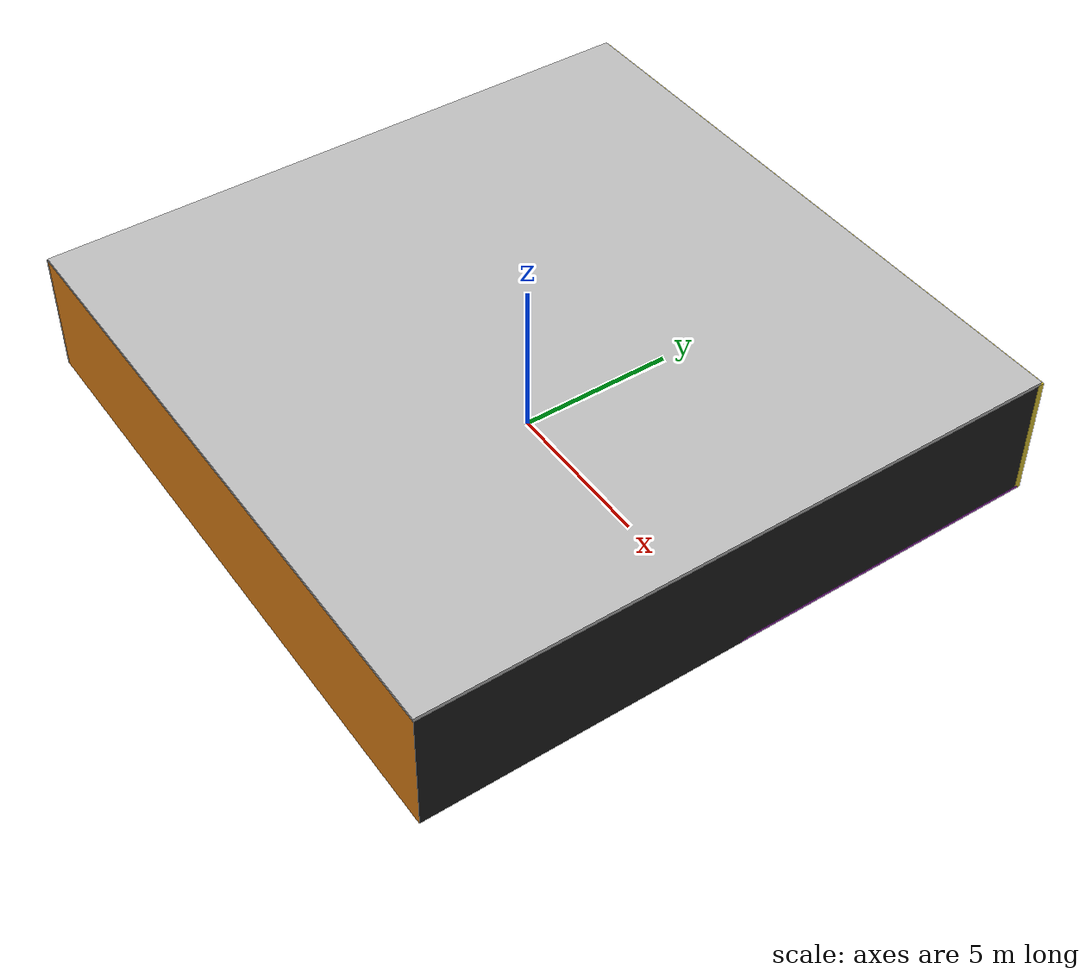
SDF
<sdf version="1.4">
 <world name="default">
  <physics type="ode">
   <max_step_size>0.001</max_step_size>
   <real_time_factor>1</real_time_factor>
   <real_time_update_rate>1000</real_time_update_rate>
   <gravity>0 0 -9.8</gravity>
  </physics>
  <scene><ambient>0.4 0.4 0.4 1</ambient><background>0.7 0.7 0.7 1</background><shadows>1</shadows></scene>
  <model name="Surrounding">
   <static>1</static>
   <link name="Ceiling">
    <collision name="Ceiling_Collision"><geometry><box><size>20 20 0.1</size></box></geometry></collision>
    <visual name="Ceiling_Visual">
     <geometry><box><size>20 20 0.1</size></box></geometry>
     <material>
      <script><uri>file://media/materials/scripts/gazebo.material</uri><name>Gazebo/LightOff</name></script>
     </material>
    </visual>
    <pose>0 0 4.05 0 0 0</pose>
   </link>
   <link name="Wall_South">
    <collision name="Wall_South_Collision">
     <geometry><box><size>20 0 4</size></box></geometry>
     <pose>0 0 2 0 -0 0</pose>
    </collision>
    <visual name="Wall_South_Visual">
     <pose>0 0 2 0 -0 0</pose>
     <geometry><box><size>20 0 4</size></box></geometry>
     <material>
      <script><uri>file://media/materials/scripts/gazebo.material</uri><name>Gazebo/Orange</name></script>
     </material>
    </visual>
    <velocity_decay><linear>0</linear><angular>0</angular></velocity_decay>
    <pose>0 -10 0 0 -0 0</pose>
   </link>
   <link name="Wall_East">
    <collision name="Wall_21_Collision">
     <geometry><box><size>20 0 4</size></box></geometry>
     <pose>0 0 2 0 -0 0</pose>
    </collision>
    <visual name="Wall_21_Visual">
     <pose>0 0 2 0 -0 0</pose>
     <geometry><box><size>20 0 4</size></box></geometry>
     <material>
      <script><uri>file://media/materials/scripts/gazebo.material</uri><name>Gazebo/FlatBlack</name></script>
     </material>
    </visual>
    <velocity_decay><linear>0</linear><angular>0</angular></velocity_decay>
    <pose>10 0 0 0 -0 1.5708</pose>
   </link>
   <link name="Wall_North">
    <collision name="Wall_22_Collision">
     <geometry><box><size>20 0.2 4</size></box></geometry>
     <pose>0 0 2 0 -0 0</pose>
    </collision>
    <visual name="Wall_22_Visual">
     <pose>0 0 2 0 -0 0</pose>
     <geometry><box><size>20 0.2 4</size></box></geometry>
     <material>
      <script><uri>file://media/materials/scripts/gazebo.material</uri><name>Gazebo/ZincYellow</name></script>
     </material>
    </visual>
    <velocity_decay><linear>0</linear><angular>0</angular></velocity_decay>
    <pose>0 10 0 0 -0 0</pose>
   </link>
   <link name="Wall_West">
    <collision name="Wall_23_Collision">
     <geometry><box><size>20 0.2 4</size></box></geometry>
     <pose>0 0 2 0 -0 0</pose>
    </collision>
    <visual name="Wall_23_Visual">
     <pose>0 0 2 0 -0 0</pose>
     <geometry><box><size>20 0.2 4</size></box></geometry>
     <material>
      <script><uri>file://media/materials/scripts/gazebo.material</uri><name>Gazebo/Black</name></script>
     </material>
    </visual>
    <velocity_decay><linear>0</linear><angular>0</angular></velocity_decay>
    <pose>-10 0 0 0 0 -1.5708</pose>
   </link>
   <link name="Ground_link">
    <collision name="collision">
     <pose>0 0 .05 0 -0 0</pose>
     <geometry><box><size>20 20 0.1</size></box></geometry>
    </collision>
    <visual name="visual">
     <pose>0 0 .05 0 -0 0</pose>
     <geometry><box><size>20 20 0.1</size></box></geometry>
     <material>
      <script><uri>file://media/materials/scripts/gazebo.material</uri><name>Gazebo/PurpleGlow</name></script>
     </material>
    </visual>
   </link>
   <static>1</static>
  </model>
  <spherical_coordinates>
   <surface_model>EARTH_WGS84</surface_model>
   <latitude_deg>0</latitude_deg>
   <longitude_deg>0</longitude_deg>
   <elevation>0</elevation>
   <heading_deg>0</heading_deg>
  </spherical_coordinates>
  <light name="lightball_0" type="diffuse">
   <diffuse>0.8 0.8 0.8 1</diffuse>
   <specular>0.2 0.2 0.2 1</specular>
   <attenuation>
    <range>100</range>
    <constant>0.7</constant>
    <linear>0.01</linear>
    <quadratic>0.001</quadratic>
   </attenuation>
   <direction>-0.5 0.1 -0.9</direction>
   <pose>6.50125834199 -1.82145450288 1.98225680347 0 0 0</pose>
  </light>
  <light name="lightball_1" type="diffuse">
   <diffuse>0.8 0.8 0.8 1</diffuse>
   <specular>0.2 0.2 0.2 1</specular>
   <attenuation>
    <range>100</range>
    <constant>0.7</constant>
    <linear>0.01</linear>
    <quadratic>0.001</quadratic>
   </attenuation>
   <direction>-0.5 0.1 -0.9</direction>
   <pose>7.62360989715 3.64573185011 1.99039786326 0 0 0</pose>
  </light>
  <light name="lightball_2" type="diffuse">
   <diffuse>0.8 0.8 0.8 1</diffuse>
   <specular>0.2 0.2 0.2 1</specular>
   <attenuation>
    <range>100</range>
    <constant>0.7</constant>
    <linear>0.01</linear>
    <quadratic>0.001</quadratic>
   </attenuation>
   <direction>-0.5 0.1 -0.9</direction>
   <pose>1.2990058517 0.673011617504 1.94513890905 0 0 0</pose>
  </light>
  <include><uri>model://cabinet</uri><pose>-7.21000328321 -3.81358541384 0 0 0 0.405336868099</pose></include>
  <include><uri>model://cabinet</uri><pose>-3.56114431033 -8.09825858194 0 0 0 2.8893806229</pose></include>
  <include>
   <uri>model://textured_shapes</uri>
   <pose>-4.88473246316 0.569875254864 0 0 0 0.913722907226</pose>
  </include>
  <include>
   <uri>model://textured_shapes</uri>
   <pose>-1.07439126356 6.72355922867 0 0 0 1.81049342494</pose>
  </include>
  <include>
   <uri>model://robocup_3Dsim_goal</uri>
   <pose>5.37591816753 3.78993744641 0 0 0 1.82550859395</pose>
  </include>
  <include><uri>model://table</uri><pose>6.79963129704 -5.09633093948 0 0 0 2.90279814744</pose></include>
 </world>
</sdf>

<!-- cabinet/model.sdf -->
<sdf version="1.5">
  <model name="cabinet">
    <static>true</static>
    <link name="cabinet_bottom_plate">
      <inertial>
        <pose>0 0 -1 0 0 0</pose>
        <inertia>
          <ixx>2.050000</ixx>
          <ixy>0</ixy>
          <ixz>0</ixz>
          <iyy>2.050000</iyy>
          <iyz>0</iyz>
          <izz>2.050000</izz>
        </inertia>
        <mass>25.000000</mass>
      </inertial>
      <collision name="cabinet_bottom_plate_geom">
        <pose>0 0 0.010000 0 0 0</pose>
        <geometry>
          <box>
            <size>0.450000 0.450000 0.020000</size>
          </box>
        </geometry>
      </collision>
      <visual name="cabinet_bottom_plate_geom_visual">
        <pose>0 0 0.010000 0 0 0</pose>
        <geometry>
          <box>
            <size>0.450000 0.450000 0.020000</size>
          </box>
        </geometry>
        <material>
          <script>
            <uri>model://media/materials/scripts/gazebo.material</uri>
            <name>Gazebo/Wood</name>
          </script>
        </material>
      </visual>
      <collision name="cabinet_bottom_plate_geom_cabinet_back_plate">
        <pose>0.235000 0 0.510000 0 0 0</pose>
        <geometry>
          <box>
            <size>0.020000 0.450000 1.020000</size>
          </box>
        </geometry>
      </collision>
      <visual name="cabinet_bottom_plate_geom_cabinet_back_plate_visual">
        <pose>0.235000 0 0.510000 0 0 0</pose>
        <geometry>
          <box>
            <size>0.020000 0.450000 1.020000</size>
          </box>
        </geometry>
        <material>
          <script>
            <uri>model://media/materials/scripts/gazebo.material</uri>
            <name>Gazebo/Wood</name>
          </script>
        </material>
      </visual>
      <collision name="cabinet_bottom_plate_geom_cabinet_left_plate">
        <pose>0 0.235000 0.510000 0 0 0</pose>
        <geometry>
          <box>
            <size>0.450000 0.020000 1.020000</size>
          </box>
        </geometry>
      </collision>
      <visual name="cabinet_bottom_plate_geom_cabinet_left_plate_visual">
        <pose>0 0.235000 0.510000 0 0 0</pose>
        <geometry>
          <box>
            <size>0.450000 0.020000 1.020000</size>
          </box>
        </geometry>
        <material>
          <script>
            <uri>model://media/materials/scripts/gazebo.material</uri>
            <name>Gazebo/Wood</name>
          </script>
        </material>
      </visual>
      <collision name="cabinet_bottom_plate_geom_cabinet_middle_plate">
        <pose>0 0 0.510000 0 0 0</pose>
        <geometry>
          <box>
            <size>0.450000 0.450000 0.020000</size>
          </box>
        </geometry>
      </collision>
      <visual name="cabinet_bottom_plate_geom_cabinet_middle_plate_visual">
        <pose>0 0 0.510000 0 0 0</pose>
        <geometry>
          <box>
            <size>0.450000 0.450000 0.020000</size>
          </box>
        </geometry>
        <material>
          <script>
            <uri>model://media/materials/scripts/gazebo.material</uri>
            <name>Gazebo/Wood</name>
          </script>
        </material>
      </visual>
      <collision name="cabinet_bottom_plate_geom_cabinet_right_plate">
        <pose>0 -0.235000 0.510000 0 0 0</pose>
        <geometry>
          <box>
            <size>0.450000 0.020000 1.020000</size>
          </box>
        </geometry>
      </collision>
      <visual name="cabinet_bottom_plate_geom_cabinet_right_plate_visual">
        <pose>0 -0.235000 0.510000 0 0 0</pose>
        <geometry>
          <box>
            <size>0.450000 0.020000 1.020000</size>
          </box>
        </geometry>
        <material>
          <script>
            <uri>model://media/materials/scripts/gazebo.material</uri>
            <name>Gazebo/Wood</name>
          </script>
        </material>
      </visual>
      <collision name="cabinet_bottom_plate_geom_cabinet_top_plate">
        <pose>0 0 1.010000 0 0 0</pose>
        <geometry>
          <box>
            <size>0.450000 0.450000 0.020000</size>
          </box>
        </geometry>
      </collision>
      <visual name="cabinet_bottom_plate_geom_cabinet_top_plate_visual">
        <pose>0 0 1.010000 0 0 0</pose>
        <geometry>
          <box>
            <size>0.450000 0.450000 0.020000</size>
          </box>
        </geometry>
        <material>
          <script>
            <uri>model://media/materials/scripts/gazebo.material</uri>
            <name>Gazebo/Wood</name>
          </script>
        </material>
      </visual>
    </link>
  </model>
</sdf>

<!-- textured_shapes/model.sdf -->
<sdf version="1.6">
  <model name="textured_shapes">
    <pose>0 0 0.5 0 0 0</pose>
    <link name="box">
      <pose>0 -1.5 0 0 0 0</pose>
      <collision name="collision">
        <geometry>
          <box>
            <size>1 1 1</size>
          </box>
        </geometry>
      </collision>
      <visual name="visual">
        <geometry>
          <box>
            <size>1 1 1</size>
          </box>
        </geometry>
        <material>
          <script>
            <uri>model://../model_source/models/textured_shapes/materials/scripts</uri>
            <uri>model://../model_source/models/textured_shapes/materials/textures</uri>
            <name>TexturedShape/Squares</name>
          </script>
        </material>
      </visual>
    </link>
    <link name="sphere">
      <collision name="collision">
        <geometry>
          <sphere>
            <radius>0.5</radius>
          </sphere>
        </geometry>
      </collision>
      <visual name="visual">
        <geometry>
          <sphere>
            <radius>0.5</radius>
          </sphere>
        </geometry>
        <material>
          <script>
            <uri>model://../model_source/models/textured_shapes/materials/scripts</uri>
            <uri>model://../model_source/models/textured_shapes/materials/textures</uri>
            <name>TexturedShape/Squares</name>
          </script>
        </material>
      </visual>
    </link>
    <link name="cylinder">
      <pose>0 1.5 0 0 0 0</pose>
      <collision name="collision">
        <geometry>
          <cylinder>
            <radius>0.5</radius>
            <length>1</length>
          </cylinder>
        </geometry>
      </collision>
      <visual name="visual">
        <geometry>
          <cylinder>
            <radius>0.5</radius>
            <length>1</length>
          </cylinder>
        </geometry>
        <material>
          <script>
            <uri>model://../model_source/models/textured_shapes/materials/scripts</uri>
            <uri>model://../model_source/models/textured_shapes/materials/textures</uri>
            <name>TexturedShape/Squares</name>
          </script>
        </material>
      </visual>
    </link>
  </model>
</sdf>

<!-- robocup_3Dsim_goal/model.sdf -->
<sdf version="1.5">
  <model name="robocup_3d_goal">
    <static>true</static>
    <link name="left_post">
      <pose>0 1.05 0.45 0 0 0</pose>
      <collision name="collision">
        <geometry>
          <cylinder>
            <radius>0.05</radius>
            <length>0.9</length>
          </cylinder>
        </geometry>
      </collision>
      <visual name="visual">
        <geometry>
          <cylinder>
            <radius>0.05</radius>
            <length>0.9</length>
          </cylinder>
        </geometry>
        <material>
          <script>
            <uri>file://media/materials/scripts/gazebo.material</uri>
            <name>Gazebo/ZincYellow</name>
          </script>
        </material>
      </visual>
    </link>
    <link name="left_support_horiz_lower">
      <pose>0.30 1.05 0.01 0 0 0</pose>
      <collision name="collision">
        <geometry>
          <box>
            <size>0.50 0.02 0.02</size>
          </box>
        </geometry>
      </collision>
      <visual name="visual">
        <geometry>
          <box>
            <size>0.50 0.02 0.02</size>
          </box>
        </geometry>
        <material>
          <script>
            <uri>file://media/materials/scripts/gazebo.material</uri>
            <name>Gazebo/White</name>
          </script>
        </material>
      </visual>
    </link>
    <link name="left_support_horiz_upper">
      <pose>0.30 1.05 0.79 0 0 0</pose>
      <collision name="collision">
        <geometry>
          <box>
            <size>0.50 0.02 0.02</size>
          </box>
        </geometry>
      </collision>
      <visual name="visual">
        <geometry>
          <box>
            <size>0.50 0.02 0.02</size>
          </box>
        </geometry>
        <material>
          <script>
            <uri>file://media/materials/scripts/gazebo.material</uri>
            <name>Gazebo/White</name>
          </script>
        </material>
      </visual>
    </link>
    <link name="left_support_vertical">
      <pose>0.56 1.05 0.4 0 1.5708 0</pose>
      <collision name="collision">
        <geometry>
          <box>
            <size>0.80 0.02 0.02</size>
          </box>
        </geometry>
      </collision>
      <visual name="visual">
        <geometry>
          <box>
            <size>0.80 0.02 0.02</size>
          </box>
        </geometry>
        <material>
          <script>
            <uri>file://media/materials/scripts/gazebo.material</uri>
            <name>Gazebo/White</name>
          </script>
        </material>
      </visual>
    </link>
    <link name="right_support_horiz_lower">
      <pose>0.30 -1.05 0.01 0 0 0</pose>
      <collision name="collision">
        <geometry>
          <box>
            <size>0.50 0.02 0.02</size>
          </box>
        </geometry>
      </collision>
      <visual name="visual">
        <geometry>
          <box>
            <size>0.50 0.02 0.02</size>
          </box>
        </geometry>
        <material>
          <script>
            <uri>file://media/materials/scripts/gazebo.material</uri>
            <name>Gazebo/White</name>
          </script>
        </material>
      </visual>
    </link>
    <link name="right_support_horiz_upper">
      <pose>0.30 -1.05 0.79 0 0 0</pose>
      <collision name="collision">
        <geometry>
          <box>
            <size>0.50 0.02 0.02</size>
          </box>
        </geometry>
      </collision>
      <visual name="visual">
        <geometry>
          <box>
            <size>0.50 0.02 0.02</size>
          </box>
        </geometry>
        <material>
          <script>
            <uri>file://media/materials/scripts/gazebo.material</uri>
            <name>Gazebo/White</name>
          </script>
        </material>
      </visual>
    </link>
    <link name="right_support_vertical">
      <pose>0.56 -1.05 0.4 0 1.5708 0</pose>
      <collision name="collision">
        <geometry>
          <box>
            <size>0.80 0.02 0.02</size>
          </box>
        </geometry>
      </collision>
      <visual name="visual">
        <geometry>
          <box>
            <size>0.80 0.02 0.02</size>
          </box>
        </geometry>
        <material>
          <script>
            <uri>file://media/materials/scripts/gazebo.material</uri>
            <name>Gazebo/White</name>
          </script>
        </material>
      </visual>
    </link>
    <link name="center_support_horiz_lower">
      <pose>0.56 0 0.01 0 1.5708 0</pose>
      <collision name="collision">
        <geometry>
          <box>
            <size>0.02 2.08 0.02</size>
          </box>
        </geometry>
      </collision>
      <visual name="visual">
        <geometry>
          <box>
            <size>0.02 2.08 0.02</size>
          </box>
        </geometry>
        <material>
          <script>
            <uri>file://media/materials/scripts/gazebo.material</uri>
            <name>Gazebo/White</name>
          </script>
        </material>
      </visual>
    </link>
    <link name="center_support_horiz_upper">
      <pose>0.56 0 0.79 0 1.5708 0</pose>
      <collision name="collision">
        <geometry>
          <box>
            <size>0.02 2.08 0.02</size>
          </box>
        </geometry>
      </collision>
      <visual name="visual">
        <geometry>
          <box>
            <size>0.02 2.08 0.02</size>
          </box>
        </geometry>
        <material>
          <script>
            <uri>file://media/materials/scripts/gazebo.material</uri>
            <name>Gazebo/White</name>
          </script>
        </material>
      </visual>
    </link>
    <link name="right_post">
      <pose>0 -1.05 0.45 0 0 0</pose>
      <collision name="collision">
        <geometry>
          <cylinder>
            <radius>0.05</radius>
            <length>0.9</length>
          </cylinder>
        </geometry>
      </collision>
      <visual name="visual">
        <geometry>
          <cylinder>
            <radius>0.05</radius>
            <length>0.9</length>
          </cylinder>
        </geometry>
        <material>
          <script>
            <uri>file://media/materials/scripts/gazebo.material</uri>
            <name>Gazebo/ZincYellow</name>
          </script>
        </material>
      </visual>
    </link>
    <link name="crossbar">
      <pose>0 0 0.85 1.57 1.57 0</pose>
      <collision name="collision">
        <geometry>
          <cylinder>
            <radius>0.05</radius>
            <length>2.0</length>
          </cylinder>
        </geometry>
      </collision>
      <visual name="visual">
        <geometry>
          <cylinder>
            <radius>0.05</radius>
            <length>2.0</length>
          </cylinder>
        </geometry>
        <material>
          <script>
            <uri>file://media/materials/scripts/gazebo.material</uri>
            <name>Gazebo/ZincYellow</name>
          </script>
        </material>
      </visual>
    </link>
    <link name="center_net">
      <pose>0.56 0 0.40 0 0 0</pose>
      <collision name="collision">
        <geometry>
          <box>
            <size>0.01 2.1 0.80</size>
          </box>
        </geometry>
      </collision>
      <visual name="visual">
        <geometry>
          <box>
            <size>0.01 2.1 0.80</size>
          </box>
        </geometry>
        <material>
          <script>
            <uri>model://../model_source/models/robocup09_spl_field/materials/scripts/</uri>
            <uri>model://../model_source/models/robocup09_spl_field/materials/textures/</uri>
            <name>RoboCup/Net</name>
          </script>
        </material>
      </visual>
    </link>
    <link name="left_net">
      <pose>0.30 1.05 0.40 0 0 0</pose>
      <collision name="collision">
        <geometry>
          <box>
            <size>0.50 0.01 0.76</size>
          </box>
        </geometry>
      </collision>
      <visual name="visual">
        <geometry>
          <box>
            <size>0.50 0.01 0.76</size>
          </box>
        </geometry>
        <material>
          <script>
            <uri>model://../model_source/models/robocup09_spl_field/materials/scripts/</uri>
            <uri>model://../model_source/models/robocup09_spl_field/materials/textures/</uri>
            <name>RoboCup/Net</name>
          </script>
        </material>
      </visual>
    </link>
    <link name="right_net">
      <pose>0.30 -1.05 0.40 0 0 0</pose>
      <collision name="collision">
        <geometry>
          <box>
            <size>0.50 0.01 0.76</size>
          </box>
        </geometry>
      </collision>
      <visual name="visual">
        <geometry>
          <box>
            <size>0.50 0.01 0.76</size>
          </box>
        </geometry>
        <material>
          <script>
            <uri>model://../model_source/models/robocup09_spl_field/materials/scripts/</uri>
            <uri>model://../model_source/models/robocup09_spl_field/materials/textures/</uri>
            <name>RoboCup/Net</name>
          </script>
        </material>
      </visual>
    </link>
  </model>
</sdf>

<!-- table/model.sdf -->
<sdf version="1.5">
  <model name="table">
    <static>true</static>
    <link name="link">
      <collision name="surface">
        <pose>0 0 1.0 0 0 0</pose>
        <geometry>
          <box>
            <size>1.5 0.8 0.03</size>
          </box>
        </geometry>
        <surface>
          <friction>
            <ode>
              <mu>0.6</mu>
              <mu2>0.6</mu2>
            </ode>
          </friction>
        </surface>
      </collision>
      <visual name="visual1">
        <pose>0 0 1.0 0 0 0</pose>
        <geometry>
          <box>
            <size>1.5 0.8 0.03</size>
          </box>
        </geometry>
        <material>
          <script>
            <uri>model://media/materials/scripts/gazebo.material</uri>
            <name>Gazebo/Wood</name>
          </script>
        </material>
      </visual>
      <collision name="front_left_leg">
        <pose>0.68 0.38 0.5 0 0 0</pose>
        <geometry>
          <cylinder>
            <radius>0.02</radius>
            <length>1.0</length>
          </cylinder>
        </geometry>
      </collision>
      <visual name="front_left_leg">
        <pose>0.68 0.38 0.5 0 0 0</pose>
        <geometry>
          <cylinder>
            <radius>0.02</radius>
            <length>1.0</length>
          </cylinder>
        </geometry>
        <material>
          <script>
            <uri>model://media/materials/scripts/gazebo.material</uri>
            <name>Gazebo/Grey</name>
          </script>
        </material>
      </visual>
      <collision name="front_right_leg">
        <pose>0.68 -0.38 0.5 0 0 0</pose>
        <geometry>
          <cylinder>
            <radius>0.02</radius>
            <length>1.0</length>
          </cylinder>
        </geometry>
      </collision>
      <visual name="front_right_leg">
        <pose>0.68 -0.38 0.5 0 0 0</pose>
        <geometry>
          <cylinder>
            <radius>0.02</radius>
            <length>1.0</length>
          </cylinder>
        </geometry>
        <material>
          <script>
            <uri>model://media/materials/scripts/gazebo.material</uri>
            <name>Gazebo/Grey</name>
          </script>
        </material>
      </visual>
      <collision name="back_right_leg">
        <pose>-0.68 -0.38 0.5 0 0 0</pose>
        <geometry>
          <cylinder>
            <radius>0.02</radius>
            <length>1.0</length>
          </cylinder>
        </geometry>
      </collision>
      <visual name="back_right_leg">
        <pose>-0.68 -0.38 0.5 0 0 0</pose>
        <geometry>
          <cylinder>
            <radius>0.02</radius>
            <length>1.0</length>
          </cylinder>
        </geometry>
        <material>
          <script>
            <uri>model://media/materials/scripts/gazebo.material</uri>
            <name>Gazebo/Grey</name>
          </script>
        </material>
      </visual>
      <collision name="back_left_leg">
        <pose>-0.68 0.38 0.5 0 0 0</pose>
        <geometry>
          <cylinder>
            <radius>0.02</radius>
            <length>1.0</length>
          </cylinder>
        </geometry>
      </collision>
      <visual name="back_left_leg">
        <pose>-0.68 0.38 0.5 0 0 0</pose>
        <geometry>
          <cylinder>
            <radius>0.02</radius>
            <length>1.0</length>
          </cylinder>
        </geometry>
        <material>
          <script>
            <uri>model://media/materials/scripts/gazebo.material</uri>
            <name>Gazebo/Grey</name>
          </script>
        </material>
      </visual>
    </link>
  </model>
</sdf>
